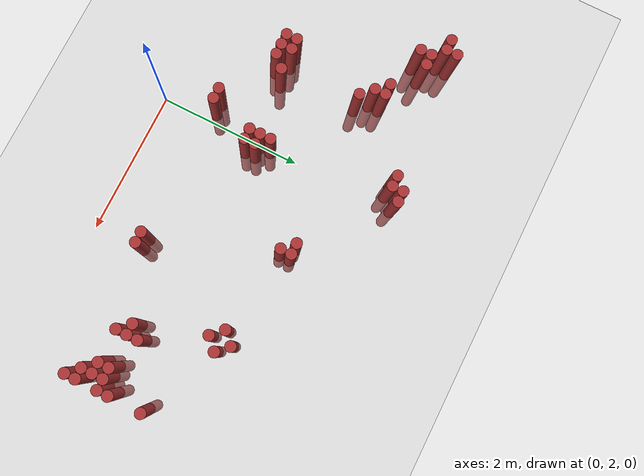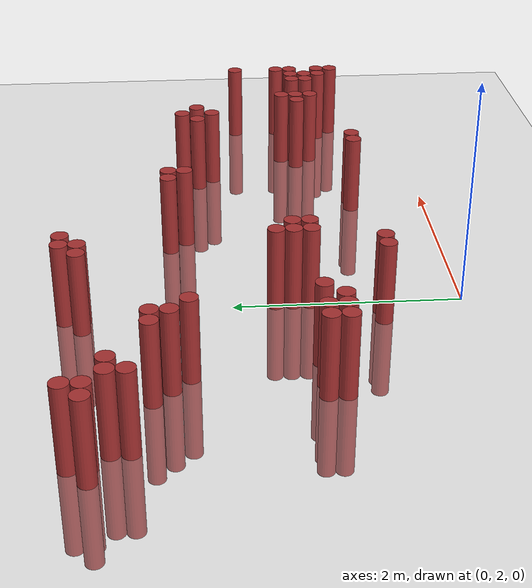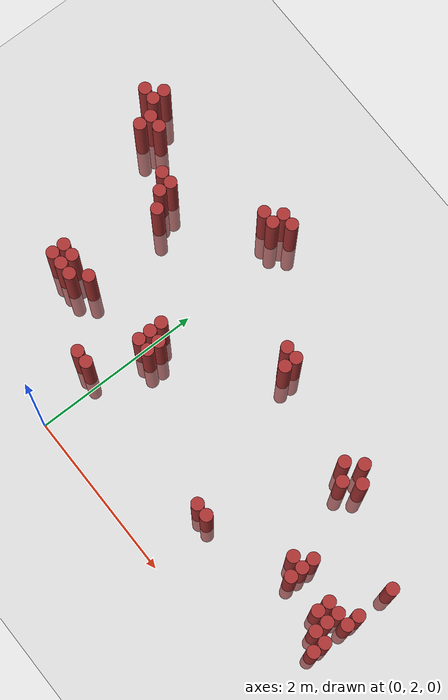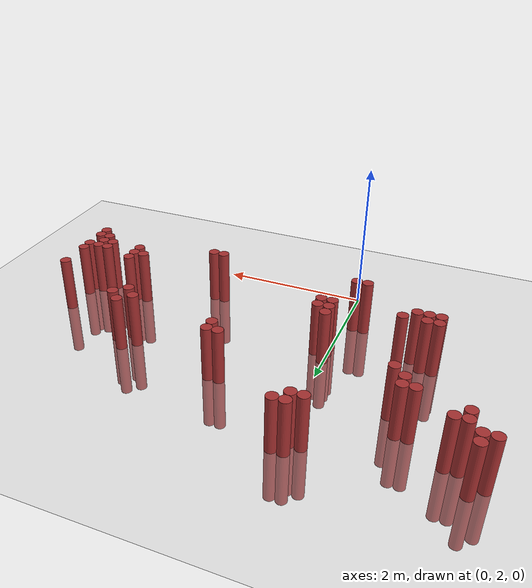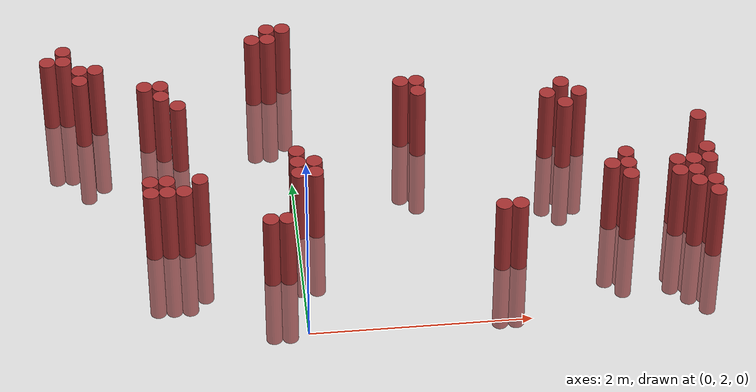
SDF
<sdf version="1.6">
 <world name="default">
  <model name="ground_plane">
   <static>1</static>
   <link name="link">
    <collision name="collision">
     <geometry><plane><normal>0 0 1</normal><size>100 100</size></plane></geometry>
     <surface><friction><ode><mu>100</mu><mu2>50</mu2></ode></friction></surface>
    </collision>
    <visual name="visual">
     <cast_shadows>0</cast_shadows>
     <geometry><plane><normal>0 0 1</normal><size>100 100</size></plane></geometry>
     <material>
      <script><uri>file://media/materials/scripts/gazebo.material</uri><name>Gazebo/Grey</name></script>
     </material>
    </visual>
   </link>
  </model>
  <model name="unit_cylinder_298">
   <static>1</static>
   <pose>-2.225000 5.125000 0.000000 0.000000 0.000000 0.000000</pose>
   <link name="link">
    <inertial>
     <mass>1</mass>
     <inertia><ixx>0.145833</ixx><ixy>0</ixy><ixz>0</ixz><iyy>0.145833</iyy><iyz>0</iyz><izz>0.125</izz></inertia>
    </inertial>
    <collision name="collision">
     <geometry><cylinder><radius>0.075000</radius><length>1.5</length></cylinder></geometry>
    </collision>
    <visual name="visual">
     <geometry><cylinder><radius>0.075000</radius><length>1.5</length></cylinder></geometry>
     <material>
      <ambient>0.648000 0.192000 0.192000 1</ambient>
      <diffuse>0.648000 0.192000 0.192000 1</diffuse>
     </material>
     <material>
      <script><name>Gazebo/Grey</name><uri>file://media/materials/scripts/gazebo.material</uri></script>
     </material>
    </visual>
   </link>
  </model>
  <model name="unit_cylinder_301">
   <static>1</static>
   <pose>-2.075000 5.125000 0.000000 0.000000 0.000000 0.000000</pose>
   <link name="link">
    <inertial>
     <mass>1</mass>
     <inertia><ixx>0.145833</ixx><ixy>0</ixy><ixz>0</ixz><iyy>0.145833</iyy><iyz>0</iyz><izz>0.125</izz></inertia>
    </inertial>
    <collision name="collision">
     <geometry><cylinder><radius>0.075000</radius><length>1.5</length></cylinder></geometry>
    </collision>
    <visual name="visual">
     <geometry><cylinder><radius>0.075000</radius><length>1.5</length></cylinder></geometry>
     <material>
      <ambient>0.648000 0.192000 0.192000 1</ambient>
      <diffuse>0.648000 0.192000 0.192000 1</diffuse>
     </material>
     <material>
      <script><name>Gazebo/Grey</name><uri>file://media/materials/scripts/gazebo.material</uri></script>
     </material>
    </visual>
   </link>
  </model>
  <model name="unit_cylinder_302">
   <static>1</static>
   <pose>-2.075000 5.275000 0.000000 0.000000 0.000000 0.000000</pose>
   <link name="link">
    <inertial>
     <mass>1</mass>
     <inertia><ixx>0.145833</ixx><ixy>0</ixy><ixz>0</ixz><iyy>0.145833</iyy><iyz>0</iyz><izz>0.125</izz></inertia>
    </inertial>
    <collision name="collision">
     <geometry><cylinder><radius>0.075000</radius><length>1.5</length></cylinder></geometry>
    </collision>
    <visual name="visual">
     <geometry><cylinder><radius>0.075000</radius><length>1.5</length></cylinder></geometry>
     <material>
      <ambient>0.648000 0.192000 0.192000 1</ambient>
      <diffuse>0.648000 0.192000 0.192000 1</diffuse>
     </material>
     <material>
      <script><name>Gazebo/Grey</name><uri>file://media/materials/scripts/gazebo.material</uri></script>
     </material>
    </visual>
   </link>
  </model>
  <model name="unit_cylinder_304">
   <static>1</static>
   <pose>-1.925000 4.825000 0.000000 0.000000 0.000000 0.000000</pose>
   <link name="link">
    <inertial>
     <mass>1</mass>
     <inertia><ixx>0.145833</ixx><ixy>0</ixy><ixz>0</ixz><iyy>0.145833</iyy><iyz>0</iyz><izz>0.125</izz></inertia>
    </inertial>
    <collision name="collision">
     <geometry><cylinder><radius>0.075000</radius><length>1.5</length></cylinder></geometry>
    </collision>
    <visual name="visual">
     <geometry><cylinder><radius>0.075000</radius><length>1.5</length></cylinder></geometry>
     <material>
      <ambient>0.648000 0.192000 0.192000 1</ambient>
      <diffuse>0.648000 0.192000 0.192000 1</diffuse>
     </material>
     <material>
      <script><name>Gazebo/Grey</name><uri>file://media/materials/scripts/gazebo.material</uri></script>
     </material>
    </visual>
   </link>
  </model>
  <model name="unit_cylinder_305">
   <static>1</static>
   <pose>-1.925000 4.975000 0.000000 0.000000 0.000000 0.000000</pose>
   <link name="link">
    <inertial>
     <mass>1</mass>
     <inertia><ixx>0.145833</ixx><ixy>0</ixy><ixz>0</ixz><iyy>0.145833</iyy><iyz>0</iyz><izz>0.125</izz></inertia>
    </inertial>
    <collision name="collision">
     <geometry><cylinder><radius>0.075000</radius><length>1.5</length></cylinder></geometry>
    </collision>
    <visual name="visual">
     <geometry><cylinder><radius>0.075000</radius><length>1.5</length></cylinder></geometry>
     <material>
      <ambient>0.648000 0.192000 0.192000 1</ambient>
      <diffuse>0.648000 0.192000 0.192000 1</diffuse>
     </material>
     <material>
      <script><name>Gazebo/Grey</name><uri>file://media/materials/scripts/gazebo.material</uri></script>
     </material>
    </visual>
   </link>
  </model>
  <model name="unit_cylinder_308">
   <static>1</static>
   <pose>-1.775000 4.975000 0.000000 0.000000 0.000000 0.000000</pose>
   <link name="link">
    <inertial>
     <mass>1</mass>
     <inertia><ixx>0.145833</ixx><ixy>0</ixy><ixz>0</ixz><iyy>0.145833</iyy><iyz>0</iyz><izz>0.125</izz></inertia>
    </inertial>
    <collision name="collision">
     <geometry><cylinder><radius>0.075000</radius><length>1.5</length></cylinder></geometry>
    </collision>
    <visual name="visual">
     <geometry><cylinder><radius>0.075000</radius><length>1.5</length></cylinder></geometry>
     <material>
      <ambient>0.648000 0.192000 0.192000 1</ambient>
      <diffuse>0.648000 0.192000 0.192000 1</diffuse>
     </material>
     <material>
      <script><name>Gazebo/Grey</name><uri>file://media/materials/scripts/gazebo.material</uri></script>
     </material>
    </visual>
   </link>
  </model>
  <model name="unit_cylinder_309">
   <static>1</static>
   <pose>-1.325000 3.175000 0.000000 0.000000 0.000000 0.000000</pose>
   <link name="link">
    <inertial>
     <mass>1</mass>
     <inertia><ixx>0.145833</ixx><ixy>0</ixy><ixz>0</ixz><iyy>0.145833</iyy><iyz>0</iyz><izz>0.125</izz></inertia>
    </inertial>
    <collision name="collision">
     <geometry><cylinder><radius>0.075000</radius><length>1.5</length></cylinder></geometry>
    </collision>
    <visual name="visual">
     <geometry><cylinder><radius>0.075000</radius><length>1.5</length></cylinder></geometry>
     <material>
      <ambient>0.648000 0.192000 0.192000 1</ambient>
      <diffuse>0.648000 0.192000 0.192000 1</diffuse>
     </material>
     <material>
      <script><name>Gazebo/Grey</name><uri>file://media/materials/scripts/gazebo.material</uri></script>
     </material>
    </visual>
   </link>
  </model>
  <model name="unit_cylinder_310">
   <static>1</static>
   <pose>-1.325000 3.325000 0.000000 0.000000 0.000000 0.000000</pose>
   <link name="link">
    <inertial>
     <mass>1</mass>
     <inertia><ixx>0.145833</ixx><ixy>0</ixy><ixz>0</ixz><iyy>0.145833</iyy><iyz>0</iyz><izz>0.125</izz></inertia>
    </inertial>
    <collision name="collision">
     <geometry><cylinder><radius>0.075000</radius><length>1.5</length></cylinder></geometry>
    </collision>
    <visual name="visual">
     <geometry><cylinder><radius>0.075000</radius><length>1.5</length></cylinder></geometry>
     <material>
      <ambient>0.648000 0.192000 0.192000 1</ambient>
      <diffuse>0.648000 0.192000 0.192000 1</diffuse>
     </material>
     <material>
      <script><name>Gazebo/Grey</name><uri>file://media/materials/scripts/gazebo.material</uri></script>
     </material>
    </visual>
   </link>
  </model>
  <model name="unit_cylinder_311">
   <static>1</static>
   <pose>-1.325000 4.675000 0.000000 0.000000 0.000000 0.000000</pose>
   <link name="link">
    <inertial>
     <mass>1</mass>
     <inertia><ixx>0.145833</ixx><ixy>0</ixy><ixz>0</ixz><iyy>0.145833</iyy><iyz>0</iyz><izz>0.125</izz></inertia>
    </inertial>
    <collision name="collision">
     <geometry><cylinder><radius>0.075000</radius><length>1.5</length></cylinder></geometry>
    </collision>
    <visual name="visual">
     <geometry><cylinder><radius>0.075000</radius><length>1.5</length></cylinder></geometry>
     <material>
      <ambient>0.648000 0.192000 0.192000 1</ambient>
      <diffuse>0.648000 0.192000 0.192000 1</diffuse>
     </material>
     <material>
      <script><name>Gazebo/Grey</name><uri>file://media/materials/scripts/gazebo.material</uri></script>
     </material>
    </visual>
   </link>
  </model>
  <model name="unit_cylinder_312">
   <static>1</static>
   <pose>-1.175000 3.175000 0.000000 0.000000 0.000000 0.000000</pose>
   <link name="link">
    <inertial>
     <mass>1</mass>
     <inertia><ixx>0.145833</ixx><ixy>0</ixy><ixz>0</ixz><iyy>0.145833</iyy><iyz>0</iyz><izz>0.125</izz></inertia>
    </inertial>
    <collision name="collision">
     <geometry><cylinder><radius>0.075000</radius><length>1.5</length></cylinder></geometry>
    </collision>
    <visual name="visual">
     <geometry><cylinder><radius>0.075000</radius><length>1.5</length></cylinder></geometry>
     <material>
      <ambient>0.648000 0.192000 0.192000 1</ambient>
      <diffuse>0.648000 0.192000 0.192000 1</diffuse>
     </material>
     <material>
      <script><name>Gazebo/Grey</name><uri>file://media/materials/scripts/gazebo.material</uri></script>
     </material>
    </visual>
   </link>
  </model>
  <model name="unit_cylinder_313">
   <static>1</static>
   <pose>-1.175000 3.325000 0.000000 0.000000 0.000000 0.000000</pose>
   <link name="link">
    <inertial>
     <mass>1</mass>
     <inertia><ixx>0.145833</ixx><ixy>0</ixy><ixz>0</ixz><iyy>0.145833</iyy><iyz>0</iyz><izz>0.125</izz></inertia>
    </inertial>
    <collision name="collision">
     <geometry><cylinder><radius>0.075000</radius><length>1.5</length></cylinder></geometry>
    </collision>
    <visual name="visual">
     <geometry><cylinder><radius>0.075000</radius><length>1.5</length></cylinder></geometry>
     <material>
      <ambient>0.648000 0.192000 0.192000 1</ambient>
      <diffuse>0.648000 0.192000 0.192000 1</diffuse>
     </material>
     <material>
      <script><name>Gazebo/Grey</name><uri>file://media/materials/scripts/gazebo.material</uri></script>
     </material>
    </visual>
   </link>
  </model>
  <model name="unit_cylinder_314">
   <static>1</static>
   <pose>-1.175000 4.525000 0.000000 0.000000 0.000000 0.000000</pose>
   <link name="link">
    <inertial>
     <mass>1</mass>
     <inertia><ixx>0.145833</ixx><ixy>0</ixy><ixz>0</ixz><iyy>0.145833</iyy><iyz>0</iyz><izz>0.125</izz></inertia>
    </inertial>
    <collision name="collision">
     <geometry><cylinder><radius>0.075000</radius><length>1.5</length></cylinder></geometry>
    </collision>
    <visual name="visual">
     <geometry><cylinder><radius>0.075000</radius><length>1.5</length></cylinder></geometry>
     <material>
      <ambient>0.648000 0.192000 0.192000 1</ambient>
      <diffuse>0.648000 0.192000 0.192000 1</diffuse>
     </material>
     <material>
      <script><name>Gazebo/Grey</name><uri>file://media/materials/scripts/gazebo.material</uri></script>
     </material>
    </visual>
   </link>
  </model>
  <model name="unit_cylinder_315">
   <static>1</static>
   <pose>-1.175000 4.675000 0.000000 0.000000 0.000000 0.000000</pose>
   <link name="link">
    <inertial>
     <mass>1</mass>
     <inertia><ixx>0.145833</ixx><ixy>0</ixy><ixz>0</ixz><iyy>0.145833</iyy><iyz>0</iyz><izz>0.125</izz></inertia>
    </inertial>
    <collision name="collision">
     <geometry><cylinder><radius>0.075000</radius><length>1.5</length></cylinder></geometry>
    </collision>
    <visual name="visual">
     <geometry><cylinder><radius>0.075000</radius><length>1.5</length></cylinder></geometry>
     <material>
      <ambient>0.648000 0.192000 0.192000 1</ambient>
      <diffuse>0.648000 0.192000 0.192000 1</diffuse>
     </material>
     <material>
      <script><name>Gazebo/Grey</name><uri>file://media/materials/scripts/gazebo.material</uri></script>
     </material>
    </visual>
   </link>
  </model>
  <model name="unit_cylinder_317">
   <static>1</static>
   <pose>-1.025000 3.175000 0.000000 0.000000 0.000000 0.000000</pose>
   <link name="link">
    <inertial>
     <mass>1</mass>
     <inertia><ixx>0.145833</ixx><ixy>0</ixy><ixz>0</ixz><iyy>0.145833</iyy><iyz>0</iyz><izz>0.125</izz></inertia>
    </inertial>
    <collision name="collision">
     <geometry><cylinder><radius>0.075000</radius><length>1.5</length></cylinder></geometry>
    </collision>
    <visual name="visual">
     <geometry><cylinder><radius>0.075000</radius><length>1.5</length></cylinder></geometry>
     <material>
      <ambient>0.648000 0.192000 0.192000 1</ambient>
      <diffuse>0.648000 0.192000 0.192000 1</diffuse>
     </material>
     <material>
      <script><name>Gazebo/Grey</name><uri>file://media/materials/scripts/gazebo.material</uri></script>
     </material>
    </visual>
   </link>
  </model>
  <model name="unit_cylinder_318">
   <static>1</static>
   <pose>-1.025000 4.375000 0.000000 0.000000 0.000000 0.000000</pose>
   <link name="link">
    <inertial>
     <mass>1</mass>
     <inertia><ixx>0.145833</ixx><ixy>0</ixy><ixz>0</ixz><iyy>0.145833</iyy><iyz>0</iyz><izz>0.125</izz></inertia>
    </inertial>
    <collision name="collision">
     <geometry><cylinder><radius>0.075000</radius><length>1.5</length></cylinder></geometry>
    </collision>
    <visual name="visual">
     <geometry><cylinder><radius>0.075000</radius><length>1.5</length></cylinder></geometry>
     <material>
      <ambient>0.648000 0.192000 0.192000 1</ambient>
      <diffuse>0.648000 0.192000 0.192000 1</diffuse>
     </material>
     <material>
      <script><name>Gazebo/Grey</name><uri>file://media/materials/scripts/gazebo.material</uri></script>
     </material>
    </visual>
   </link>
  </model>
  <model name="unit_cylinder_323">
   <static>1</static>
   <pose>-0.875000 3.325000 0.000000 0.000000 0.000000 0.000000</pose>
   <link name="link">
    <inertial>
     <mass>1</mass>
     <inertia><ixx>0.145833</ixx><ixy>0</ixy><ixz>0</ixz><iyy>0.145833</iyy><iyz>0</iyz><izz>0.125</izz></inertia>
    </inertial>
    <collision name="collision">
     <geometry><cylinder><radius>0.075000</radius><length>1.5</length></cylinder></geometry>
    </collision>
    <visual name="visual">
     <geometry><cylinder><radius>0.075000</radius><length>1.5</length></cylinder></geometry>
     <material>
      <ambient>0.648000 0.192000 0.192000 1</ambient>
      <diffuse>0.648000 0.192000 0.192000 1</diffuse>
     </material>
     <material>
      <script><name>Gazebo/Grey</name><uri>file://media/materials/scripts/gazebo.material</uri></script>
     </material>
    </visual>
   </link>
  </model>
  <model name="unit_cylinder_331">
   <static>1</static>
   <pose>-0.275000 2.725000 0.000000 0.000000 0.000000 0.000000</pose>
   <link name="link">
    <inertial>
     <mass>1</mass>
     <inertia><ixx>0.145833</ixx><ixy>0</ixy><ixz>0</ixz><iyy>0.145833</iyy><iyz>0</iyz><izz>0.125</izz></inertia>
    </inertial>
    <collision name="collision">
     <geometry><cylinder><radius>0.075000</radius><length>1.5</length></cylinder></geometry>
    </collision>
    <visual name="visual">
     <geometry><cylinder><radius>0.075000</radius><length>1.5</length></cylinder></geometry>
     <material>
      <ambient>0.648000 0.192000 0.192000 1</ambient>
      <diffuse>0.648000 0.192000 0.192000 1</diffuse>
     </material>
     <material>
      <script><name>Gazebo/Grey</name><uri>file://media/materials/scripts/gazebo.material</uri></script>
     </material>
    </visual>
   </link>
  </model>
  <model name="unit_cylinder_332">
   <static>1</static>
   <pose>-0.275000 5.275000 0.000000 0.000000 0.000000 0.000000</pose>
   <link name="link">
    <inertial>
     <mass>1</mass>
     <inertia><ixx>0.145833</ixx><ixy>0</ixy><ixz>0</ixz><iyy>0.145833</iyy><iyz>0</iyz><izz>0.125</izz></inertia>
    </inertial>
    <collision name="collision">
     <geometry><cylinder><radius>0.075000</radius><length>1.5</length></cylinder></geometry>
    </collision>
    <visual name="visual">
     <geometry><cylinder><radius>0.075000</radius><length>1.5</length></cylinder></geometry>
     <material>
      <ambient>0.648000 0.192000 0.192000 1</ambient>
      <diffuse>0.648000 0.192000 0.192000 1</diffuse>
     </material>
     <material>
      <script><name>Gazebo/Grey</name><uri>file://media/materials/scripts/gazebo.material</uri></script>
     </material>
    </visual>
   </link>
  </model>
  <model name="unit_cylinder_334">
   <static>1</static>
   <pose>-0.125000 2.725000 0.000000 0.000000 0.000000 0.000000</pose>
   <link name="link">
    <inertial>
     <mass>1</mass>
     <inertia><ixx>0.145833</ixx><ixy>0</ixy><ixz>0</ixz><iyy>0.145833</iyy><iyz>0</iyz><izz>0.125</izz></inertia>
    </inertial>
    <collision name="collision">
     <geometry><cylinder><radius>0.075000</radius><length>1.5</length></cylinder></geometry>
    </collision>
    <visual name="visual">
     <geometry><cylinder><radius>0.075000</radius><length>1.5</length></cylinder></geometry>
     <material>
      <ambient>0.648000 0.192000 0.192000 1</ambient>
      <diffuse>0.648000 0.192000 0.192000 1</diffuse>
     </material>
     <material>
      <script><name>Gazebo/Grey</name><uri>file://media/materials/scripts/gazebo.material</uri></script>
     </material>
    </visual>
   </link>
  </model>
  <model name="unit_cylinder_335">
   <static>1</static>
   <pose>-0.125000 5.275000 0.000000 0.000000 0.000000 0.000000</pose>
   <link name="link">
    <inertial>
     <mass>1</mass>
     <inertia><ixx>0.145833</ixx><ixy>0</ixy><ixz>0</ixz><iyy>0.145833</iyy><iyz>0</iyz><izz>0.125</izz></inertia>
    </inertial>
    <collision name="collision">
     <geometry><cylinder><radius>0.075000</radius><length>1.5</length></cylinder></geometry>
    </collision>
    <visual name="visual">
     <geometry><cylinder><radius>0.075000</radius><length>1.5</length></cylinder></geometry>
     <material>
      <ambient>0.648000 0.192000 0.192000 1</ambient>
      <diffuse>0.648000 0.192000 0.192000 1</diffuse>
     </material>
     <material>
      <script><name>Gazebo/Grey</name><uri>file://media/materials/scripts/gazebo.material</uri></script>
     </material>
    </visual>
   </link>
  </model>
  <model name="unit_cylinder_336">
   <static>1</static>
   <pose>-0.125000 5.425000 0.000000 0.000000 0.000000 0.000000</pose>
   <link name="link">
    <inertial>
     <mass>1</mass>
     <inertia><ixx>0.145833</ixx><ixy>0</ixy><ixz>0</ixz><iyy>0.145833</iyy><iyz>0</iyz><izz>0.125</izz></inertia>
    </inertial>
    <collision name="collision">
     <geometry><cylinder><radius>0.075000</radius><length>1.5</length></cylinder></geometry>
    </collision>
    <visual name="visual">
     <geometry><cylinder><radius>0.075000</radius><length>1.5</length></cylinder></geometry>
     <material>
      <ambient>0.648000 0.192000 0.192000 1</ambient>
      <diffuse>0.648000 0.192000 0.192000 1</diffuse>
     </material>
     <material>
      <script><name>Gazebo/Grey</name><uri>file://media/materials/scripts/gazebo.material</uri></script>
     </material>
    </visual>
   </link>
  </model>
  <model name="unit_cylinder_337">
   <static>1</static>
   <pose>0.025000 3.325000 0.000000 0.000000 0.000000 0.000000</pose>
   <link name="link">
    <inertial>
     <mass>1</mass>
     <inertia><ixx>0.145833</ixx><ixy>0</ixy><ixz>0</ixz><iyy>0.145833</iyy><iyz>0</iyz><izz>0.125</izz></inertia>
    </inertial>
    <collision name="collision">
     <geometry><cylinder><radius>0.075000</radius><length>1.5</length></cylinder></geometry>
    </collision>
    <visual name="visual">
     <geometry><cylinder><radius>0.075000</radius><length>1.5</length></cylinder></geometry>
     <material>
      <ambient>0.648000 0.192000 0.192000 1</ambient>
      <diffuse>0.648000 0.192000 0.192000 1</diffuse>
     </material>
     <material>
      <script><name>Gazebo/Grey</name><uri>file://media/materials/scripts/gazebo.material</uri></script>
     </material>
    </visual>
   </link>
  </model>
  <model name="unit_cylinder_338">
   <static>1</static>
   <pose>0.025000 3.475000 0.000000 0.000000 0.000000 0.000000</pose>
   <link name="link">
    <inertial>
     <mass>1</mass>
     <inertia><ixx>0.145833</ixx><ixy>0</ixy><ixz>0</ixz><iyy>0.145833</iyy><iyz>0</iyz><izz>0.125</izz></inertia>
    </inertial>
    <collision name="collision">
     <geometry><cylinder><radius>0.075000</radius><length>1.5</length></cylinder></geometry>
    </collision>
    <visual name="visual">
     <geometry><cylinder><radius>0.075000</radius><length>1.5</length></cylinder></geometry>
     <material>
      <ambient>0.648000 0.192000 0.192000 1</ambient>
      <diffuse>0.648000 0.192000 0.192000 1</diffuse>
     </material>
     <material>
      <script><name>Gazebo/Grey</name><uri>file://media/materials/scripts/gazebo.material</uri></script>
     </material>
    </visual>
   </link>
  </model>
  <model name="unit_cylinder_339">
   <static>1</static>
   <pose>0.025000 3.625000 0.000000 0.000000 0.000000 0.000000</pose>
   <link name="link">
    <inertial>
     <mass>1</mass>
     <inertia><ixx>0.145833</ixx><ixy>0</ixy><ixz>0</ixz><iyy>0.145833</iyy><iyz>0</iyz><izz>0.125</izz></inertia>
    </inertial>
    <collision name="collision">
     <geometry><cylinder><radius>0.075000</radius><length>1.5</length></cylinder></geometry>
    </collision>
    <visual name="visual">
     <geometry><cylinder><radius>0.075000</radius><length>1.5</length></cylinder></geometry>
     <material>
      <ambient>0.648000 0.192000 0.192000 1</ambient>
      <diffuse>0.648000 0.192000 0.192000 1</diffuse>
     </material>
     <material>
      <script><name>Gazebo/Grey</name><uri>file://media/materials/scripts/gazebo.material</uri></script>
     </material>
    </visual>
   </link>
  </model>
  <model name="unit_cylinder_340">
   <static>1</static>
   <pose>0.025000 5.425000 0.000000 0.000000 0.000000 0.000000</pose>
   <link name="link">
    <inertial>
     <mass>1</mass>
     <inertia><ixx>0.145833</ixx><ixy>0</ixy><ixz>0</ixz><iyy>0.145833</iyy><iyz>0</iyz><izz>0.125</izz></inertia>
    </inertial>
    <collision name="collision">
     <geometry><cylinder><radius>0.075000</radius><length>1.5</length></cylinder></geometry>
    </collision>
    <visual name="visual">
     <geometry><cylinder><radius>0.075000</radius><length>1.5</length></cylinder></geometry>
     <material>
      <ambient>0.648000 0.192000 0.192000 1</ambient>
      <diffuse>0.648000 0.192000 0.192000 1</diffuse>
     </material>
     <material>
      <script><name>Gazebo/Grey</name><uri>file://media/materials/scripts/gazebo.material</uri></script>
     </material>
    </visual>
   </link>
  </model>
  <model name="unit_cylinder_341">
   <static>1</static>
   <pose>0.175000 3.325000 0.000000 0.000000 0.000000 0.000000</pose>
   <link name="link">
    <inertial>
     <mass>1</mass>
     <inertia><ixx>0.145833</ixx><ixy>0</ixy><ixz>0</ixz><iyy>0.145833</iyy><iyz>0</iyz><izz>0.125</izz></inertia>
    </inertial>
    <collision name="collision">
     <geometry><cylinder><radius>0.075000</radius><length>1.5</length></cylinder></geometry>
    </collision>
    <visual name="visual">
     <geometry><cylinder><radius>0.075000</radius><length>1.5</length></cylinder></geometry>
     <material>
      <ambient>0.648000 0.192000 0.192000 1</ambient>
      <diffuse>0.648000 0.192000 0.192000 1</diffuse>
     </material>
     <material>
      <script><name>Gazebo/Grey</name><uri>file://media/materials/scripts/gazebo.material</uri></script>
     </material>
    </visual>
   </link>
  </model>
  <model name="unit_cylinder_342">
   <static>1</static>
   <pose>0.175000 3.475000 0.000000 0.000000 0.000000 0.000000</pose>
   <link name="link">
    <inertial>
     <mass>1</mass>
     <inertia><ixx>0.145833</ixx><ixy>0</ixy><ixz>0</ixz><iyy>0.145833</iyy><iyz>0</iyz><izz>0.125</izz></inertia>
    </inertial>
    <collision name="collision">
     <geometry><cylinder><radius>0.075000</radius><length>1.5</length></cylinder></geometry>
    </collision>
    <visual name="visual">
     <geometry><cylinder><radius>0.075000</radius><length>1.5</length></cylinder></geometry>
     <material>
      <ambient>0.648000 0.192000 0.192000 1</ambient>
      <diffuse>0.648000 0.192000 0.192000 1</diffuse>
     </material>
     <material>
      <script><name>Gazebo/Grey</name><uri>file://media/materials/scripts/gazebo.material</uri></script>
     </material>
    </visual>
   </link>
  </model>
  <model name="unit_cylinder_349">
   <static>1</static>
   <pose>1.075000 4.525000 0.000000 0.000000 0.000000 0.000000</pose>
   <link name="link">
    <inertial>
     <mass>1</mass>
     <inertia><ixx>0.145833</ixx><ixy>0</ixy><ixz>0</ixz><iyy>0.145833</iyy><iyz>0</iyz><izz>0.125</izz></inertia>
    </inertial>
    <collision name="collision">
     <geometry><cylinder><radius>0.075000</radius><length>1.5</length></cylinder></geometry>
    </collision>
    <visual name="visual">
     <geometry><cylinder><radius>0.075000</radius><length>1.5</length></cylinder></geometry>
     <material>
      <ambient>0.648000 0.192000 0.192000 1</ambient>
      <diffuse>0.648000 0.192000 0.192000 1</diffuse>
     </material>
     <material>
      <script><name>Gazebo/Grey</name><uri>file://media/materials/scripts/gazebo.material</uri></script>
     </material>
    </visual>
   </link>
  </model>
  <model name="unit_cylinder_351">
   <static>1</static>
   <pose>1.225000 4.375000 0.000000 0.000000 0.000000 0.000000</pose>
   <link name="link">
    <inertial>
     <mass>1</mass>
     <inertia><ixx>0.145833</ixx><ixy>0</ixy><ixz>0</ixz><iyy>0.145833</iyy><iyz>0</iyz><izz>0.125</izz></inertia>
    </inertial>
    <collision name="collision">
     <geometry><cylinder><radius>0.075000</radius><length>1.5</length></cylinder></geometry>
    </collision>
    <visual name="visual">
     <geometry><cylinder><radius>0.075000</radius><length>1.5</length></cylinder></geometry>
     <material>
      <ambient>0.648000 0.192000 0.192000 1</ambient>
      <diffuse>0.648000 0.192000 0.192000 1</diffuse>
     </material>
     <material>
      <script><name>Gazebo/Grey</name><uri>file://media/materials/scripts/gazebo.material</uri></script>
     </material>
    </visual>
   </link>
  </model>
  <model name="unit_cylinder_352">
   <static>1</static>
   <pose>1.225000 4.525000 0.000000 0.000000 0.000000 0.000000</pose>
   <link name="link">
    <inertial>
     <mass>1</mass>
     <inertia><ixx>0.145833</ixx><ixy>0</ixy><ixz>0</ixz><iyy>0.145833</iyy><iyz>0</iyz><izz>0.125</izz></inertia>
    </inertial>
    <collision name="collision">
     <geometry><cylinder><radius>0.075000</radius><length>1.5</length></cylinder></geometry>
    </collision>
    <visual name="visual">
     <geometry><cylinder><radius>0.075000</radius><length>1.5</length></cylinder></geometry>
     <material>
      <ambient>0.648000 0.192000 0.192000 1</ambient>
      <diffuse>0.648000 0.192000 0.192000 1</diffuse>
     </material>
     <material>
      <script><name>Gazebo/Grey</name><uri>file://media/materials/scripts/gazebo.material</uri></script>
     </material>
    </visual>
   </link>
  </model>
  <model name="unit_cylinder_362">
   <static>1</static>
   <pose>1.825000 2.725000 0.000000 0.000000 0.000000 0.000000</pose>
   <link name="link">
    <inertial>
     <mass>1</mass>
     <inertia><ixx>0.145833</ixx><ixy>0</ixy><ixz>0</ixz><iyy>0.145833</iyy><iyz>0</iyz><izz>0.125</izz></inertia>
    </inertial>
    <collision name="collision">
     <geometry><cylinder><radius>0.075000</radius><length>1.5</length></cylinder></geometry>
    </collision>
    <visual name="visual">
     <geometry><cylinder><radius>0.075000</radius><length>1.5</length></cylinder></geometry>
     <material>
      <ambient>0.648000 0.192000 0.192000 1</ambient>
      <diffuse>0.648000 0.192000 0.192000 1</diffuse>
     </material>
     <material>
      <script><name>Gazebo/Grey</name><uri>file://media/materials/scripts/gazebo.material</uri></script>
     </material>
    </visual>
   </link>
  </model>
  <model name="unit_cylinder_365">
   <static>1</static>
   <pose>1.975000 2.725000 0.000000 0.000000 0.000000 0.000000</pose>
   <link name="link">
    <inertial>
     <mass>1</mass>
     <inertia><ixx>0.145833</ixx><ixy>0</ixy><ixz>0</ixz><iyy>0.145833</iyy><iyz>0</iyz><izz>0.125</izz></inertia>
    </inertial>
    <collision name="collision">
     <geometry><cylinder><radius>0.075000</radius><length>1.5</length></cylinder></geometry>
    </collision>
    <visual name="visual">
     <geometry><cylinder><radius>0.075000</radius><length>1.5</length></cylinder></geometry>
     <material>
      <ambient>0.648000 0.192000 0.192000 1</ambient>
      <diffuse>0.648000 0.192000 0.192000 1</diffuse>
     </material>
     <material>
      <script><name>Gazebo/Grey</name><uri>file://media/materials/scripts/gazebo.material</uri></script>
     </material>
    </visual>
   </link>
  </model>
  <model name="unit_cylinder_369">
   <static>1</static>
   <pose>2.425000 4.225000 0.000000 0.000000 0.000000 0.000000</pose>
   <link name="link">
    <inertial>
     <mass>1</mass>
     <inertia><ixx>0.145833</ixx><ixy>0</ixy><ixz>0</ixz><iyy>0.145833</iyy><iyz>0</iyz><izz>0.125</izz></inertia>
    </inertial>
    <collision name="collision">
     <geometry><cylinder><radius>0.075000</radius><length>1.5</length></cylinder></geometry>
    </collision>
    <visual name="visual">
     <geometry><cylinder><radius>0.075000</radius><length>1.5</length></cylinder></geometry>
     <material>
      <ambient>0.648000 0.192000 0.192000 1</ambient>
      <diffuse>0.648000 0.192000 0.192000 1</diffuse>
     </material>
     <material>
      <script><name>Gazebo/Grey</name><uri>file://media/materials/scripts/gazebo.material</uri></script>
     </material>
    </visual>
   </link>
  </model>
  <model name="unit_cylinder_370">
   <static>1</static>
   <pose>2.575000 4.075000 0.000000 0.000000 0.000000 0.000000</pose>
   <link name="link">
    <inertial>
     <mass>1</mass>
     <inertia><ixx>0.145833</ixx><ixy>0</ixy><ixz>0</ixz><iyy>0.145833</iyy><iyz>0</iyz><izz>0.125</izz></inertia>
    </inertial>
    <collision name="collision">
     <geometry><cylinder><radius>0.075000</radius><length>1.5</length></cylinder></geometry>
    </collision>
    <visual name="visual">
     <geometry><cylinder><radius>0.075000</radius><length>1.5</length></cylinder></geometry>
     <material>
      <ambient>0.648000 0.192000 0.192000 1</ambient>
      <diffuse>0.648000 0.192000 0.192000 1</diffuse>
     </material>
     <material>
      <script><name>Gazebo/Grey</name><uri>file://media/materials/scripts/gazebo.material</uri></script>
     </material>
    </visual>
   </link>
  </model>
  <model name="unit_cylinder_371">
   <static>1</static>
   <pose>2.575000 4.375000 0.000000 0.000000 0.000000 0.000000</pose>
   <link name="link">
    <inertial>
     <mass>1</mass>
     <inertia><ixx>0.145833</ixx><ixy>0</ixy><ixz>0</ixz><iyy>0.145833</iyy><iyz>0</iyz><izz>0.125</izz></inertia>
    </inertial>
    <collision name="collision">
     <geometry><cylinder><radius>0.075000</radius><length>1.5</length></cylinder></geometry>
    </collision>
    <visual name="visual">
     <geometry><cylinder><radius>0.075000</radius><length>1.5</length></cylinder></geometry>
     <material>
      <ambient>0.648000 0.192000 0.192000 1</ambient>
      <diffuse>0.648000 0.192000 0.192000 1</diffuse>
     </material>
     <material>
      <script><name>Gazebo/Grey</name><uri>file://media/materials/scripts/gazebo.material</uri></script>
     </material>
    </visual>
   </link>
  </model>
  <model name="unit_cylinder_374">
   <static>1</static>
   <pose>2.725000 4.225000 0.000000 0.000000 0.000000 0.000000</pose>
   <link name="link">
    <inertial>
     <mass>1</mass>
     <inertia><ixx>0.145833</ixx><ixy>0</ixy><ixz>0</ixz><iyy>0.145833</iyy><iyz>0</iyz><izz>0.125</izz></inertia>
    </inertial>
    <collision name="collision">
     <geometry><cylinder><radius>0.075000</radius><length>1.5</length></cylinder></geometry>
    </collision>
    <visual name="visual">
     <geometry><cylinder><radius>0.075000</radius><length>1.5</length></cylinder></geometry>
     <material>
      <ambient>0.648000 0.192000 0.192000 1</ambient>
      <diffuse>0.648000 0.192000 0.192000 1</diffuse>
     </material>
     <material>
      <script><name>Gazebo/Grey</name><uri>file://media/materials/scripts/gazebo.material</uri></script>
     </material>
    </visual>
   </link>
  </model>
  <model name="unit_cylinder_376">
   <static>1</static>
   <pose>2.875000 3.175000 0.000000 0.000000 0.000000 0.000000</pose>
   <link name="link">
    <inertial>
     <mass>1</mass>
     <inertia><ixx>0.145833</ixx><ixy>0</ixy><ixz>0</ixz><iyy>0.145833</iyy><iyz>0</iyz><izz>0.125</izz></inertia>
    </inertial>
    <collision name="collision">
     <geometry><cylinder><radius>0.075000</radius><length>1.5</length></cylinder></geometry>
    </collision>
    <visual name="visual">
     <geometry><cylinder><radius>0.075000</radius><length>1.5</length></cylinder></geometry>
     <material>
      <ambient>0.648000 0.192000 0.192000 1</ambient>
      <diffuse>0.648000 0.192000 0.192000 1</diffuse>
     </material>
     <material>
      <script><name>Gazebo/Grey</name><uri>file://media/materials/scripts/gazebo.material</uri></script>
     </material>
    </visual>
   </link>
  </model>
  <model name="unit_cylinder_377">
   <static>1</static>
   <pose>3.025000 3.025000 0.000000 0.000000 0.000000 0.000000</pose>
   <link name="link">
    <inertial>
     <mass>1</mass>
     <inertia><ixx>0.145833</ixx><ixy>0</ixy><ixz>0</ixz><iyy>0.145833</iyy><iyz>0</iyz><izz>0.125</izz></inertia>
    </inertial>
    <collision name="collision">
     <geometry><cylinder><radius>0.075000</radius><length>1.5</length></cylinder></geometry>
    </collision>
    <visual name="visual">
     <geometry><cylinder><radius>0.075000</radius><length>1.5</length></cylinder></geometry>
     <material>
      <ambient>0.648000 0.192000 0.192000 1</ambient>
      <diffuse>0.648000 0.192000 0.192000 1</diffuse>
     </material>
     <material>
      <script><name>Gazebo/Grey</name><uri>file://media/materials/scripts/gazebo.material</uri></script>
     </material>
    </visual>
   </link>
  </model>
  <model name="unit_cylinder_378">
   <static>1</static>
   <pose>3.025000 3.175000 0.000000 0.000000 0.000000 0.000000</pose>
   <link name="link">
    <inertial>
     <mass>1</mass>
     <inertia><ixx>0.145833</ixx><ixy>0</ixy><ixz>0</ixz><iyy>0.145833</iyy><iyz>0</iyz><izz>0.125</izz></inertia>
    </inertial>
    <collision name="collision">
     <geometry><cylinder><radius>0.075000</radius><length>1.5</length></cylinder></geometry>
    </collision>
    <visual name="visual">
     <geometry><cylinder><radius>0.075000</radius><length>1.5</length></cylinder></geometry>
     <material>
      <ambient>0.648000 0.192000 0.192000 1</ambient>
      <diffuse>0.648000 0.192000 0.192000 1</diffuse>
     </material>
     <material>
      <script><name>Gazebo/Grey</name><uri>file://media/materials/scripts/gazebo.material</uri></script>
     </material>
    </visual>
   </link>
  </model>
  <model name="unit_cylinder_379">
   <static>1</static>
   <pose>3.025000 3.325000 0.000000 0.000000 0.000000 0.000000</pose>
   <link name="link">
    <inertial>
     <mass>1</mass>
     <inertia><ixx>0.145833</ixx><ixy>0</ixy><ixz>0</ixz><iyy>0.145833</iyy><iyz>0</iyz><izz>0.125</izz></inertia>
    </inertial>
    <collision name="collision">
     <geometry><cylinder><radius>0.075000</radius><length>1.5</length></cylinder></geometry>
    </collision>
    <visual name="visual">
     <geometry><cylinder><radius>0.075000</radius><length>1.5</length></cylinder></geometry>
     <material>
      <ambient>0.648000 0.192000 0.192000 1</ambient>
      <diffuse>0.648000 0.192000 0.192000 1</diffuse>
     </material>
     <material>
      <script><name>Gazebo/Grey</name><uri>file://media/materials/scripts/gazebo.material</uri></script>
     </material>
    </visual>
   </link>
  </model>
  <model name="unit_cylinder_380">
   <static>1</static>
   <pose>3.475000 3.025000 0.000000 0.000000 0.000000 0.000000</pose>
   <link name="link">
    <inertial>
     <mass>1</mass>
     <inertia><ixx>0.145833</ixx><ixy>0</ixy><ixz>0</ixz><iyy>0.145833</iyy><iyz>0</iyz><izz>0.125</izz></inertia>
    </inertial>
    <collision name="collision">
     <geometry><cylinder><radius>0.075000</radius><length>1.5</length></cylinder></geometry>
    </collision>
    <visual name="visual">
     <geometry><cylinder><radius>0.075000</radius><length>1.5</length></cylinder></geometry>
     <material>
      <ambient>0.648000 0.192000 0.192000 1</ambient>
      <diffuse>0.648000 0.192000 0.192000 1</diffuse>
     </material>
     <material>
      <script><name>Gazebo/Grey</name><uri>file://media/materials/scripts/gazebo.material</uri></script>
     </material>
    </visual>
   </link>
  </model>
  <model name="unit_cylinder_381">
   <static>1</static>
   <pose>3.475000 3.175000 0.000000 0.000000 0.000000 0.000000</pose>
   <link name="link">
    <inertial>
     <mass>1</mass>
     <inertia><ixx>0.145833</ixx><ixy>0</ixy><ixz>0</ixz><iyy>0.145833</iyy><iyz>0</iyz><izz>0.125</izz></inertia>
    </inertial>
    <collision name="collision">
     <geometry><cylinder><radius>0.075000</radius><length>1.5</length></cylinder></geometry>
    </collision>
    <visual name="visual">
     <geometry><cylinder><radius>0.075000</radius><length>1.5</length></cylinder></geometry>
     <material>
      <ambient>0.648000 0.192000 0.192000 1</ambient>
      <diffuse>0.648000 0.192000 0.192000 1</diffuse>
     </material>
     <material>
      <script><name>Gazebo/Grey</name><uri>file://media/materials/scripts/gazebo.material</uri></script>
     </material>
    </visual>
   </link>
  </model>
  <model name="unit_cylinder_384">
   <static>1</static>
   <pose>3.625000 2.875000 0.000000 0.000000 0.000000 0.000000</pose>
   <link name="link">
    <inertial>
     <mass>1</mass>
     <inertia><ixx>0.145833</ixx><ixy>0</ixy><ixz>0</ixz><iyy>0.145833</iyy><iyz>0</iyz><izz>0.125</izz></inertia>
    </inertial>
    <collision name="collision">
     <geometry><cylinder><radius>0.075000</radius><length>1.5</length></cylinder></geometry>
    </collision>
    <visual name="visual">
     <geometry><cylinder><radius>0.075000</radius><length>1.5</length></cylinder></geometry>
     <material>
      <ambient>0.648000 0.192000 0.192000 1</ambient>
      <diffuse>0.648000 0.192000 0.192000 1</diffuse>
     </material>
     <material>
      <script><name>Gazebo/Grey</name><uri>file://media/materials/scripts/gazebo.material</uri></script>
     </material>
    </visual>
   </link>
  </model>
  <model name="unit_cylinder_385">
   <static>1</static>
   <pose>3.625000 3.025000 0.000000 0.000000 0.000000 0.000000</pose>
   <link name="link">
    <inertial>
     <mass>1</mass>
     <inertia><ixx>0.145833</ixx><ixy>0</ixy><ixz>0</ixz><iyy>0.145833</iyy><iyz>0</iyz><izz>0.125</izz></inertia>
    </inertial>
    <collision name="collision">
     <geometry><cylinder><radius>0.075000</radius><length>1.5</length></cylinder></geometry>
    </collision>
    <visual name="visual">
     <geometry><cylinder><radius>0.075000</radius><length>1.5</length></cylinder></geometry>
     <material>
      <ambient>0.648000 0.192000 0.192000 1</ambient>
      <diffuse>0.648000 0.192000 0.192000 1</diffuse>
     </material>
     <material>
      <script><name>Gazebo/Grey</name><uri>file://media/materials/scripts/gazebo.material</uri></script>
     </material>
    </visual>
   </link>
  </model>
  <model name="unit_cylinder_386">
   <static>1</static>
   <pose>3.625000 3.175000 0.000000 0.000000 0.000000 0.000000</pose>
   <link name="link">
    <inertial>
     <mass>1</mass>
     <inertia><ixx>0.145833</ixx><ixy>0</ixy><ixz>0</ixz><iyy>0.145833</iyy><iyz>0</iyz><izz>0.125</izz></inertia>
    </inertial>
    <collision name="collision">
     <geometry><cylinder><radius>0.075000</radius><length>1.5</length></cylinder></geometry>
    </collision>
    <visual name="visual">
     <geometry><cylinder><radius>0.075000</radius><length>1.5</length></cylinder></geometry>
     <material>
      <ambient>0.648000 0.192000 0.192000 1</ambient>
      <diffuse>0.648000 0.192000 0.192000 1</diffuse>
     </material>
     <material>
      <script><name>Gazebo/Grey</name><uri>file://media/materials/scripts/gazebo.material</uri></script>
     </material>
    </visual>
   </link>
  </model>
  <model name="unit_cylinder_393">
   <static>1</static>
   <pose>3.775000 2.725000 0.000000 0.000000 0.000000 0.000000</pose>
   <link name="link">
    <inertial>
     <mass>1</mass>
     <inertia><ixx>0.145833</ixx><ixy>0</ixy><ixz>0</ixz><iyy>0.145833</iyy><iyz>0</iyz><izz>0.125</izz></inertia>
    </inertial>
    <collision name="collision">
     <geometry><cylinder><radius>0.075000</radius><length>1.5</length></cylinder></geometry>
    </collision>
    <visual name="visual">
     <geometry><cylinder><radius>0.075000</radius><length>1.5</length></cylinder></geometry>
     <material>
      <ambient>0.648000 0.192000 0.192000 1</ambient>
      <diffuse>0.648000 0.192000 0.192000 1</diffuse>
     </material>
     <material>
      <script><name>Gazebo/Grey</name><uri>file://media/materials/scripts/gazebo.material</uri></script>
     </material>
    </visual>
   </link>
  </model>
  <model name="unit_cylinder_394">
   <static>1</static>
   <pose>3.775000 2.875000 0.000000 0.000000 0.000000 0.000000</pose>
   <link name="link">
    <inertial>
     <mass>1</mass>
     <inertia><ixx>0.145833</ixx><ixy>0</ixy><ixz>0</ixz><iyy>0.145833</iyy><iyz>0</iyz><izz>0.125</izz></inertia>
    </inertial>
    <collision name="collision">
     <geometry><cylinder><radius>0.075000</radius><length>1.5</length></cylinder></geometry>
    </collision>
    <visual name="visual">
     <geometry><cylinder><radius>0.075000</radius><length>1.5</length></cylinder></geometry>
     <material>
      <ambient>0.648000 0.192000 0.192000 1</ambient>
      <diffuse>0.648000 0.192000 0.192000 1</diffuse>
     </material>
     <material>
      <script><name>Gazebo/Grey</name><uri>file://media/materials/scripts/gazebo.material</uri></script>
     </material>
    </visual>
   </link>
  </model>
  <model name="unit_cylinder_395">
   <static>1</static>
   <pose>3.775000 3.175000 0.000000 0.000000 0.000000 0.000000</pose>
   <link name="link">
    <inertial>
     <mass>1</mass>
     <inertia><ixx>0.145833</ixx><ixy>0</ixy><ixz>0</ixz><iyy>0.145833</iyy><iyz>0</iyz><izz>0.125</izz></inertia>
    </inertial>
    <collision name="collision">
     <geometry><cylinder><radius>0.075000</radius><length>1.5</length></cylinder></geometry>
    </collision>
    <visual name="visual">
     <geometry><cylinder><radius>0.075000</radius><length>1.5</length></cylinder></geometry>
     <material>
      <ambient>0.648000 0.192000 0.192000 1</ambient>
      <diffuse>0.648000 0.192000 0.192000 1</diffuse>
     </material>
     <material>
      <script><name>Gazebo/Grey</name><uri>file://media/materials/scripts/gazebo.material</uri></script>
     </material>
    </visual>
   </link>
  </model>
  <model name="unit_cylinder_396">
   <static>1</static>
   <pose>3.775000 3.325000 0.000000 0.000000 0.000000 0.000000</pose>
   <link name="link">
    <inertial>
     <mass>1</mass>
     <inertia><ixx>0.145833</ixx><ixy>0</ixy><ixz>0</ixz><iyy>0.145833</iyy><iyz>0</iyz><izz>0.125</izz></inertia>
    </inertial>
    <collision name="collision">
     <geometry><cylinder><radius>0.075000</radius><length>1.5</length></cylinder></geometry>
    </collision>
    <visual name="visual">
     <geometry><cylinder><radius>0.075000</radius><length>1.5</length></cylinder></geometry>
     <material>
      <ambient>0.648000 0.192000 0.192000 1</ambient>
      <diffuse>0.648000 0.192000 0.192000 1</diffuse>
     </material>
     <material>
      <script><name>Gazebo/Grey</name><uri>file://media/materials/scripts/gazebo.material</uri></script>
     </material>
    </visual>
   </link>
  </model>
  <model name="unit_cylinder_397">
   <static>1</static>
   <pose>3.775000 3.775000 0.000000 0.000000 0.000000 0.000000</pose>
   <link name="link">
    <inertial>
     <mass>1</mass>
     <inertia><ixx>0.145833</ixx><ixy>0</ixy><ixz>0</ixz><iyy>0.145833</iyy><iyz>0</iyz><izz>0.125</izz></inertia>
    </inertial>
    <collision name="collision">
     <geometry><cylinder><radius>0.075000</radius><length>1.5</length></cylinder></geometry>
    </collision>
    <visual name="visual">
     <geometry><cylinder><radius>0.075000</radius><length>1.5</length></cylinder></geometry>
     <material>
      <ambient>0.648000 0.192000 0.192000 1</ambient>
      <diffuse>0.648000 0.192000 0.192000 1</diffuse>
     </material>
     <material>
      <script><name>Gazebo/Grey</name><uri>file://media/materials/scripts/gazebo.material</uri></script>
     </material>
    </visual>
   </link>
  </model>
 </world>
</sdf>
